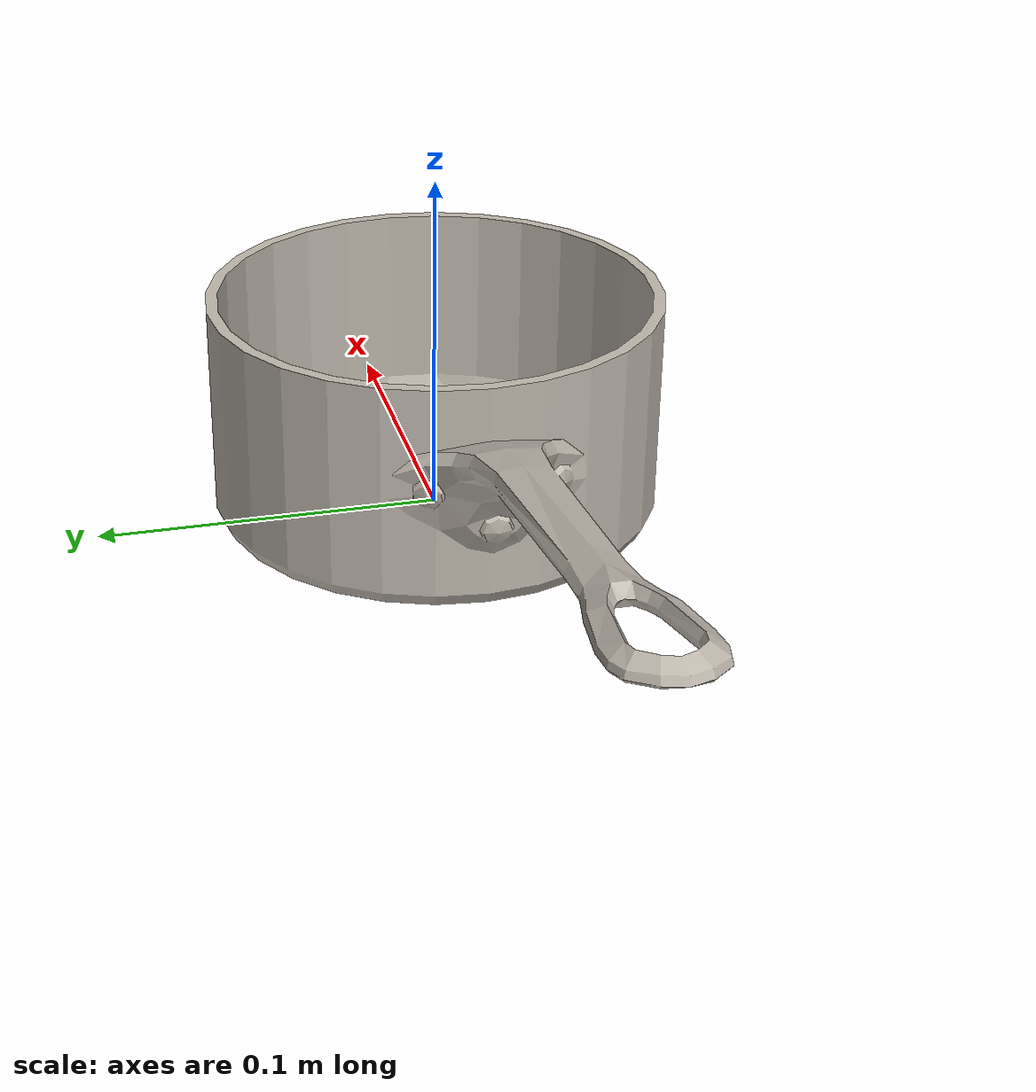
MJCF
<?xml version="1.0"?>
<mujoco model="saucepan">
  <compiler angle="radian" meshdir="assets/" texturedir="assets/"/>
  <default class="main">
    <default class="saucepan">
      <default class="visual">
        <geom type="mesh" contype="0" conaffinity="0" group="2"/>
      </default>
      <default class="collision">
        <geom type="mesh" group="3" solref="0.004" solimp="0.95 0.98"/>
      </default>
      <default class="collision_wall">
        <geom size="0.0018 0.017 0.032" type="box" group="3" solref="0.004" solimp="0.95 0.98"/>
      </default>
    </default>
  </default>
  <asset>
    <texture type="2d" name="saucepan" file="saucepan_basecolor.png"/>
    <material name="saucepan" texture="saucepan" specular="0.2" shininess="0.2"/>
    <mesh name="saucepan" file="saucepan.obj"/>
    <mesh name="saucepan_collision_handle" file="saucepan_collision_handle.obj"/>
  </asset>
  <worldbody>
    <body name="saucepan" childclass="saucepan">
      <geom name="mesh" class="visual" quat="0.707105 0.707108 0 0" mass="0.3" material="saucepan" mesh="saucepan"/>
      <geom name="collider_handle" class="collision" quat="0.707105 0.707108 0 0" mass="0" mesh="saucepan_collision_handle"/>
      <geom class="collision" size="0.067 0.003" pos="0 0 0.003" type="cylinder" mass="0"/>
      <geom class="collision_wall" pos="-0.062 0 0.035" mass="0"/>
      <geom class="collision_wall" pos="-0.0536811 -0.0310215 0.035" quat="0.965874 0 0 0.259013" mass="0"/>
      <geom class="collision_wall" pos="-0.0309569 -0.0537184 0.035" quat="0.865825 0 0 0.500347" mass="0"/>
      <geom class="collision_wall" pos="7.46277e-05 -0.062 0.035" quat="0.706681 0 0 0.707532" mass="0"/>
      <geom class="collision_wall" pos="0.0310861 -0.0536438 0.035" quat="0.499305 0 0 0.866426" mass="0"/>
      <geom class="collision_wall" pos="0.0537557 -0.0308922 0.035" quat="0.25785 0 0 0.966185" mass="0"/>
      <geom class="collision_wall" pos="0.0619998 0.000149255 0.035" quat="-0.00120367 0 0 0.999999" mass="0"/>
      <geom class="collision_wall" pos="0.0536063 0.0311507 0.035" quat="-0.260175 0 0 0.965561" mass="0"/>
      <geom class="collision_wall" pos="0.0308275 0.0537928 0.035" quat="-0.501389 0 0 0.865222" mass="0"/>
      <geom class="collision_wall" pos="-0.000223883 0.0619996 0.035" quat="-0.708382 0 0 0.705829" mass="0"/>
      <geom class="collision_wall" pos="-0.0312152 0.0535688 0.035" quat="-0.867027 0 0 0.498262" mass="0"/>
      <geom class="collision_wall" pos="-0.0538299 0.0307627 0.035" quat="-0.966495 0 0 0.256687" mass="0"/>
    </body>
  </worldbody>
</mujoco>
